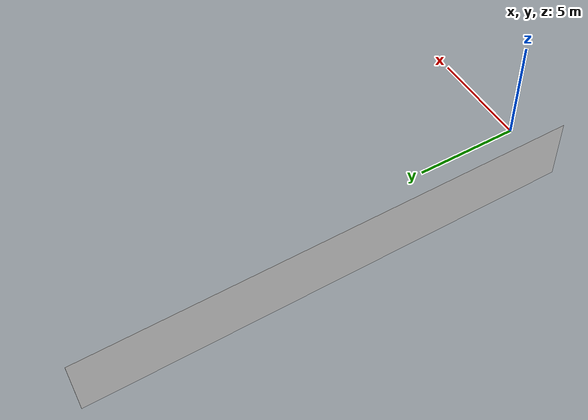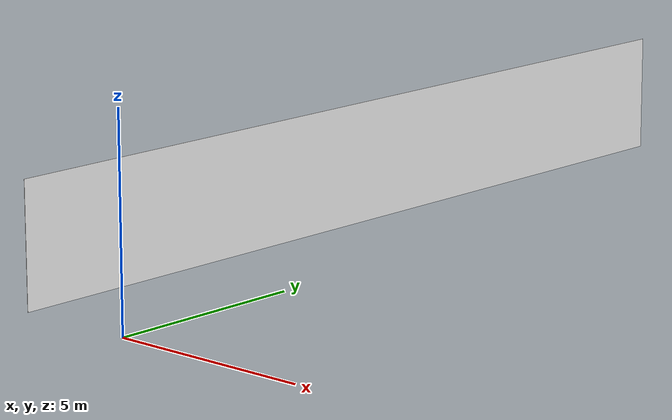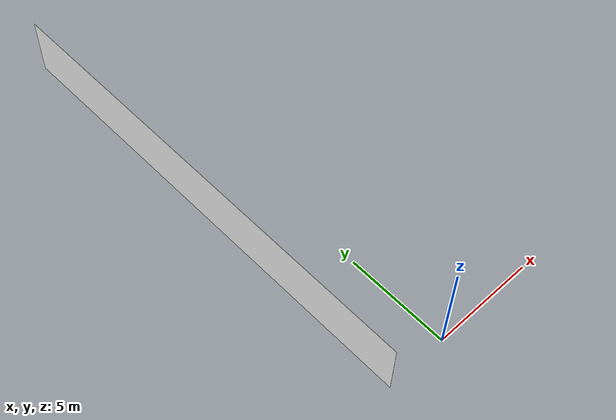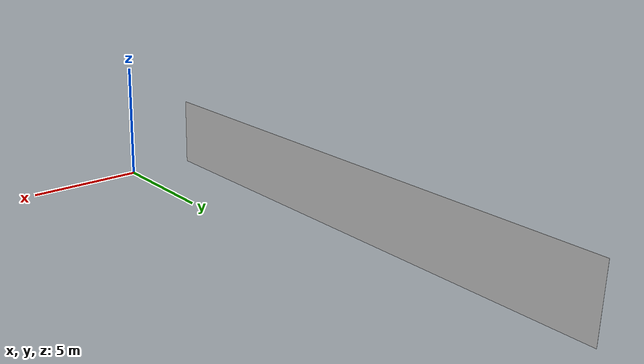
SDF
<sdf version="1.6">
 <world name="office_world">
  <model name="cut_border_wall_y_-4.50">
   <static>true</static>
   <pose>-3.0000 11.2500000 0 0 0 0</pose>
   <link name="link">
    <collision name="collision">
     <pose>0 0 1.500000 0 0 0</pose>
     <geometry><box><size>0.0100000 22.51000 3.000000</size></box></geometry>
    </collision>
    <visual name="visual">
     <pose>0 0 1.500000 0 0 0</pose>
     <geometry><box><size>0.0100000 22.51000 3.000000</size></box></geometry>
     <material>
      <ambient>1.0 1.0 1.0 1.0</ambient>
      <diffuse>1.0 1.0 1.0 1.0</diffuse>
      <specular>0.2 0.2 0.2 1.0</specular>
      <emissive>0 0 0 1</emissive>
      <pbr><metal><albedo_map>file://media/materials/textures/plain.png</albedo_map></metal></pbr>
     </material>
    </visual>
   </link>
  </model>
 </world>
</sdf>
